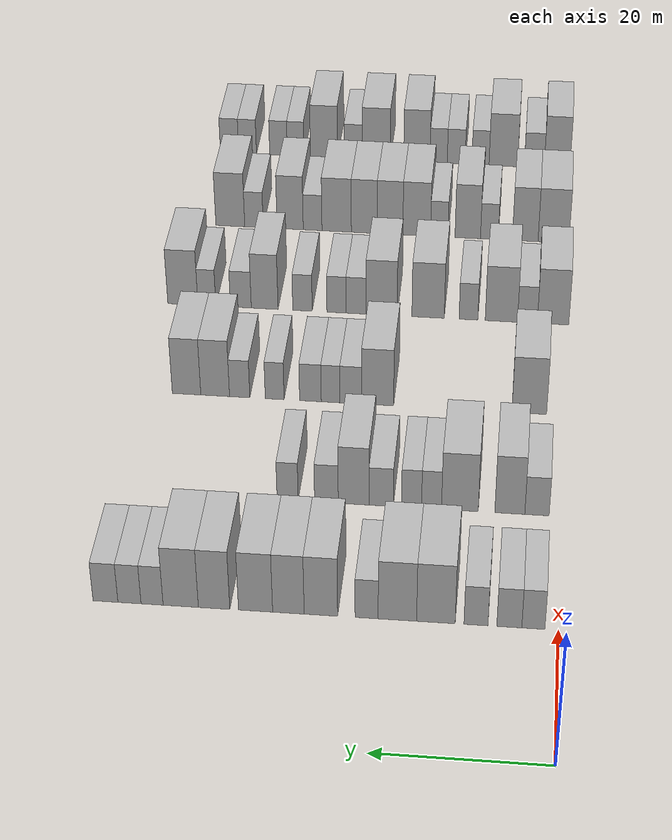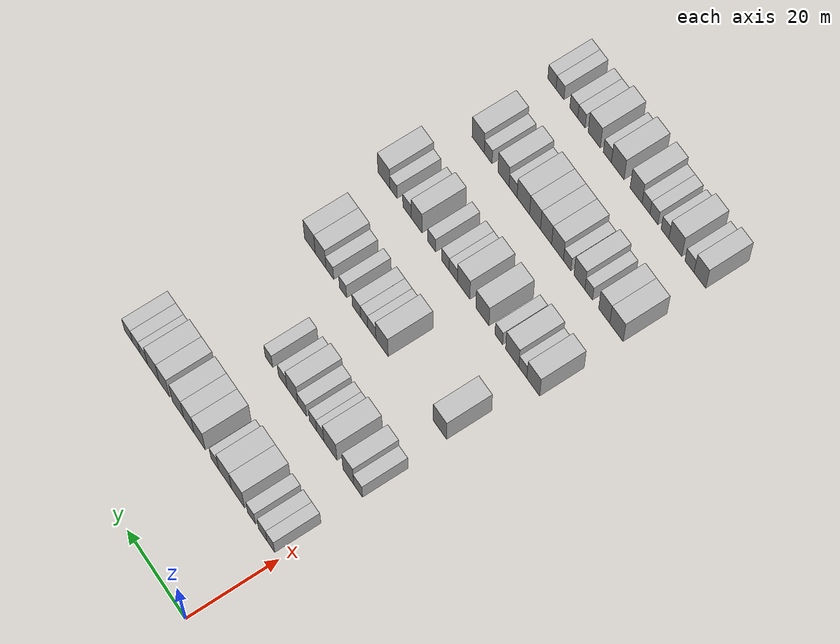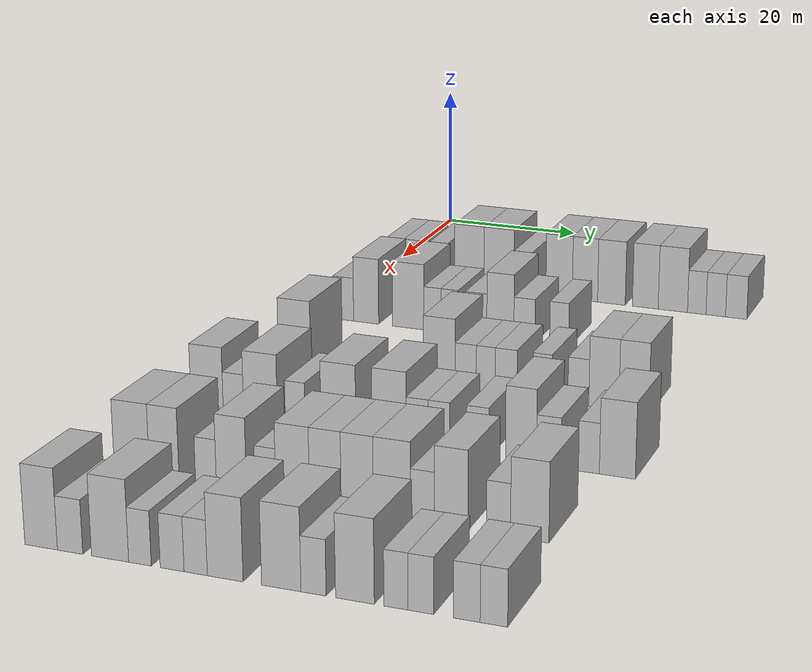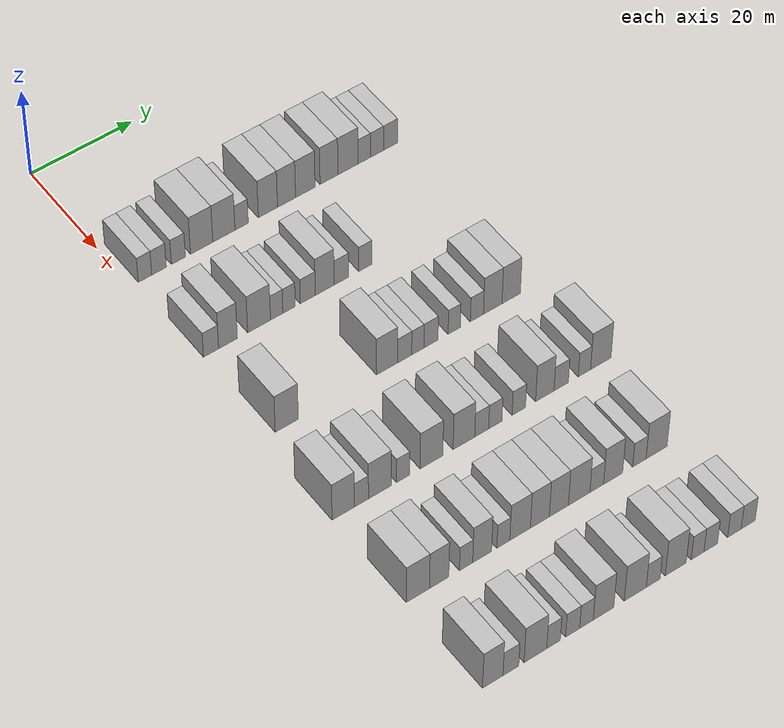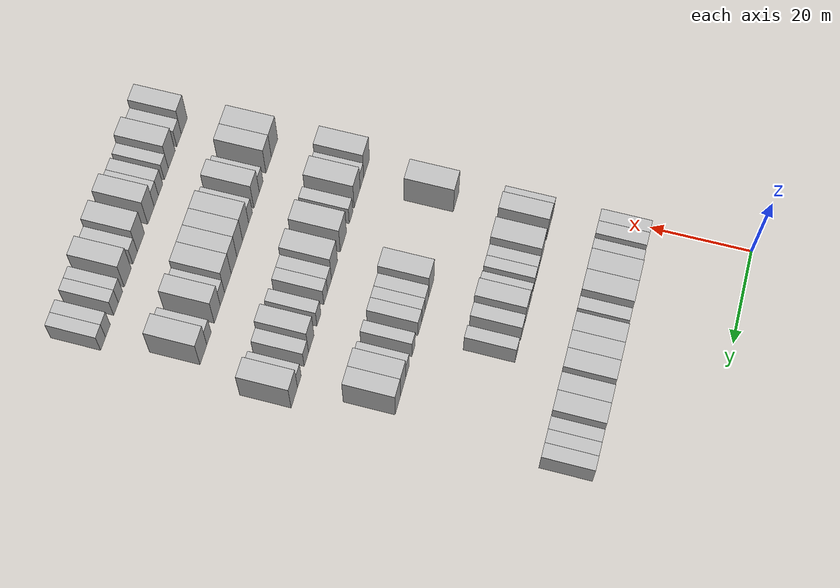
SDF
<sdf version="1.6">
 <world name="default">
  <model name="building_78">
   <static>1</static>
   <pose>25.0000 2.8547 0 0.000000 0.000000 0.000000</pose>
   <link name="link">
    <pose>0 0 3.00 0 0 0</pose>
    <collision name="collision"><geometry><box><size>10.0000 2.6202 6.0000</size></box></geometry></collision>
    <visual name="visual">
     <cast_shadows>0</cast_shadows>
     <geometry><box><size>10.0000 2.6202 6.0000</size></box></geometry>
     <material>
      <script>
       <uri>model://HANNAS_wall/materials/scripts</uri>
       <uri>model://HANNAS_wall/materials/textures</uri>
       <name>vrc/HANNAS_wall</name>
      </script>
     </material>
    </visual>
   </link>
  </model>
  <model name="building_79">
   <static>1</static>
   <pose>25.0000 5.5787 0 0.000000 0.000000 0.000000</pose>
   <link name="link">
    <pose>0 0 3.00 0 0 0</pose>
    <collision name="collision"><geometry><box><size>10.0000 2.8278 6.0000</size></box></geometry></collision>
    <visual name="visual">
     <cast_shadows>0</cast_shadows>
     <geometry><box><size>10.0000 2.8278 6.0000</size></box></geometry>
     <material>
      <script>
       <uri>model://HANNAS_wall/materials/scripts</uri>
       <uri>model://HANNAS_wall/materials/textures</uri>
       <name>vrc/HANNAS_wall</name>
      </script>
     </material>
    </visual>
   </link>
  </model>
  <model name="building_80">
   <static>1</static>
   <pose>25.0000 9.3568 0 0.000000 0.000000 0.000000</pose>
   <link name="link">
    <pose>0 0 3.00 0 0 0</pose>
    <collision name="collision"><geometry><box><size>10.0000 2.7286 6.0000</size></box></geometry></collision>
    <visual name="visual">
     <cast_shadows>0</cast_shadows>
     <geometry><box><size>10.0000 2.7286 6.0000</size></box></geometry>
     <material>
      <script>
       <uri>model://HANNAS_wall/materials/scripts</uri>
       <uri>model://HANNAS_wall/materials/textures</uri>
       <name>vrc/HANNAS_wall</name>
      </script>
     </material>
    </visual>
   </link>
  </model>
  <model name="building_81">
   <static>1</static>
   <pose>25.0000 13.9173 0 0.000000 0.000000 0.000000</pose>
   <link name="link">
    <pose>0 0 4.50 0 0 0</pose>
    <collision name="collision"><geometry><box><size>10.0000 4.3924 9.0000</size></box></geometry></collision>
    <visual name="visual">
     <cast_shadows>0</cast_shadows>
     <geometry><box><size>10.0000 4.3924 9.0000</size></box></geometry>
     <material>
      <script>
       <uri>model://HANNAS_wall/materials/scripts</uri>
       <uri>model://HANNAS_wall/materials/textures</uri>
       <name>vrc/HANNAS_wall</name>
      </script>
     </material>
    </visual>
   </link>
  </model>
  <model name="building_82">
   <static>1</static>
   <pose>25.0000 18.3083 0 0.000000 0.000000 0.000000</pose>
   <link name="link">
    <pose>0 0 4.50 0 0 0</pose>
    <collision name="collision"><geometry><box><size>10.0000 4.3897 9.0000</size></box></geometry></collision>
    <visual name="visual">
     <cast_shadows>0</cast_shadows>
     <geometry><box><size>10.0000 4.3897 9.0000</size></box></geometry>
     <material>
      <script>
       <uri>model://HANNAS_wall/materials/scripts</uri>
       <uri>model://HANNAS_wall/materials/textures</uri>
       <name>vrc/HANNAS_wall</name>
      </script>
     </material>
    </visual>
   </link>
  </model>
  <model name="building_83">
   <static>1</static>
   <pose>25.0000 21.8197 0 0.000000 0.000000 0.000000</pose>
   <link name="link">
    <pose>0 0 3.00 0 0 0</pose>
    <collision name="collision"><geometry><box><size>10.0000 2.6331 6.0000</size></box></geometry></collision>
    <visual name="visual">
     <cast_shadows>0</cast_shadows>
     <geometry><box><size>10.0000 2.6331 6.0000</size></box></geometry>
     <material>
      <script>
       <uri>model://HANNAS_wall/materials/scripts</uri>
       <uri>model://HANNAS_wall/materials/textures</uri>
       <name>vrc/HANNAS_wall</name>
      </script>
     </material>
    </visual>
   </link>
  </model>
  <model name="building_84">
   <static>1</static>
   <pose>25.0000 27.0525 0 0.000000 0.000000 0.000000</pose>
   <link name="link">
    <pose>0 0 4.50 0 0 0</pose>
    <collision name="collision"><geometry><box><size>10.0000 3.8324 9.0000</size></box></geometry></collision>
    <visual name="visual">
     <cast_shadows>0</cast_shadows>
     <geometry><box><size>10.0000 3.8324 9.0000</size></box></geometry>
     <material>
      <script>
       <uri>model://HANNAS_wall/materials/scripts</uri>
       <uri>model://HANNAS_wall/materials/textures</uri>
       <name>vrc/HANNAS_wall</name>
      </script>
     </material>
    </visual>
   </link>
  </model>
  <model name="building_85">
   <static>1</static>
   <pose>25.0000 30.7832 0 0.000000 0.000000 0.000000</pose>
   <link name="link">
    <pose>0 0 4.50 0 0 0</pose>
    <collision name="collision"><geometry><box><size>10.0000 3.6289 9.0000</size></box></geometry></collision>
    <visual name="visual">
     <cast_shadows>0</cast_shadows>
     <geometry><box><size>10.0000 3.6289 9.0000</size></box></geometry>
     <material>
      <script>
       <uri>model://HANNAS_wall/materials/scripts</uri>
       <uri>model://HANNAS_wall/materials/textures</uri>
       <name>vrc/HANNAS_wall</name>
      </script>
     </material>
    </visual>
   </link>
  </model>
  <model name="building_86">
   <static>1</static>
   <pose>25.0000 34.5635 0 0.000000 0.000000 0.000000</pose>
   <link name="link">
    <pose>0 0 4.50 0 0 0</pose>
    <collision name="collision"><geometry><box><size>10.0000 3.9317 9.0000</size></box></geometry></collision>
    <visual name="visual">
     <cast_shadows>0</cast_shadows>
     <geometry><box><size>10.0000 3.9317 9.0000</size></box></geometry>
     <material>
      <script>
       <uri>model://HANNAS_wall/materials/scripts</uri>
       <uri>model://HANNAS_wall/materials/textures</uri>
       <name>vrc/HANNAS_wall</name>
      </script>
     </material>
    </visual>
   </link>
  </model>
  <model name="building_87">
   <static>1</static>
   <pose>25.0000 39.3460 0 0.000000 0.000000 0.000000</pose>
   <link name="link">
    <pose>0 0 4.50 0 0 0</pose>
    <collision name="collision"><geometry><box><size>10.0000 3.6334 9.0000</size></box></geometry></collision>
    <visual name="visual">
     <cast_shadows>0</cast_shadows>
     <geometry><box><size>10.0000 3.6334 9.0000</size></box></geometry>
     <material>
      <script>
       <uri>model://HANNAS_wall/materials/scripts</uri>
       <uri>model://HANNAS_wall/materials/textures</uri>
       <name>vrc/HANNAS_wall</name>
      </script>
     </material>
    </visual>
   </link>
  </model>
  <model name="building_88">
   <static>1</static>
   <pose>25.0000 43.2037 0 0.000000 0.000000 0.000000</pose>
   <link name="link">
    <pose>0 0 4.50 0 0 0</pose>
    <collision name="collision"><geometry><box><size>10.0000 4.0820 9.0000</size></box></geometry></collision>
    <visual name="visual">
     <cast_shadows>0</cast_shadows>
     <geometry><box><size>10.0000 4.0820 9.0000</size></box></geometry>
     <material>
      <script>
       <uri>model://HANNAS_wall/materials/scripts</uri>
       <uri>model://HANNAS_wall/materials/textures</uri>
       <name>vrc/HANNAS_wall</name>
      </script>
     </material>
    </visual>
   </link>
  </model>
  <model name="building_89">
   <static>1</static>
   <pose>25.0000 46.5238 0 0.000000 0.000000 0.000000</pose>
   <link name="link">
    <pose>0 0 3.00 0 0 0</pose>
    <collision name="collision"><geometry><box><size>10.0000 2.5582 6.0000</size></box></geometry></collision>
    <visual name="visual">
     <cast_shadows>0</cast_shadows>
     <geometry><box><size>10.0000 2.5582 6.0000</size></box></geometry>
     <material>
      <script>
       <uri>model://HANNAS_wall/materials/scripts</uri>
       <uri>model://HANNAS_wall/materials/textures</uri>
       <name>vrc/HANNAS_wall</name>
      </script>
     </material>
    </visual>
   </link>
  </model>
  <model name="building_90">
   <static>1</static>
   <pose>25.0000 49.1461 0 0.000000 0.000000 0.000000</pose>
   <link name="link">
    <pose>0 0 3.00 0 0 0</pose>
    <collision name="collision"><geometry><box><size>10.0000 2.6864 6.0000</size></box></geometry></collision>
    <visual name="visual">
     <cast_shadows>0</cast_shadows>
     <geometry><box><size>10.0000 2.6864 6.0000</size></box></geometry>
     <material>
      <script>
       <uri>model://HANNAS_wall/materials/scripts</uri>
       <uri>model://HANNAS_wall/materials/textures</uri>
       <name>vrc/HANNAS_wall</name>
      </script>
     </material>
    </visual>
   </link>
  </model>
  <model name="building_91">
   <static>1</static>
   <pose>25.0000 51.9358 0 0.000000 0.000000 0.000000</pose>
   <link name="link">
    <pose>0 0 3.00 0 0 0</pose>
    <collision name="collision"><geometry><box><size>10.0000 2.8929 6.0000</size></box></geometry></collision>
    <visual name="visual">
     <cast_shadows>0</cast_shadows>
     <geometry><box><size>10.0000 2.8929 6.0000</size></box></geometry>
     <material>
      <script>
       <uri>model://HANNAS_wall/materials/scripts</uri>
       <uri>model://HANNAS_wall/materials/textures</uri>
       <name>vrc/HANNAS_wall</name>
      </script>
     </material>
    </visual>
   </link>
  </model>
  <model name="building_260">
   <static>1</static>
   <pose>44.0000 2.9138 0 0.000000 0.000000 0.000000</pose>
   <link name="link">
    <pose>0 0 3.00 0 0 0</pose>
    <collision name="collision"><geometry><box><size>10.0000 2.9205 6.0000</size></box></geometry></collision>
    <visual name="visual">
     <cast_shadows>0</cast_shadows>
     <geometry><box><size>10.0000 2.9205 6.0000</size></box></geometry>
     <material>
      <script>
       <uri>model://HANNAS_wall/materials/scripts</uri>
       <uri>model://HANNAS_wall/materials/textures</uri>
       <name>vrc/HANNAS_wall</name>
      </script>
     </material>
    </visual>
   </link>
  </model>
  <model name="building_261">
   <static>1</static>
   <pose>44.0000 6.1777 0 0.000000 0.000000 0.000000</pose>
   <link name="link">
    <pose>0 0 4.50 0 0 0</pose>
    <collision name="collision"><geometry><box><size>10.0000 3.6073 9.0000</size></box></geometry></collision>
    <visual name="visual">
     <cast_shadows>0</cast_shadows>
     <geometry><box><size>10.0000 3.6073 9.0000</size></box></geometry>
     <material>
      <script>
       <uri>model://HANNAS_wall/materials/scripts</uri>
       <uri>model://HANNAS_wall/materials/textures</uri>
       <name>vrc/HANNAS_wall</name>
      </script>
     </material>
    </visual>
   </link>
  </model>
  <model name="building_262">
   <static>1</static>
   <pose>44.0000 12.1971 0 0.000000 0.000000 0.000000</pose>
   <link name="link">
    <pose>0 0 4.50 0 0 0</pose>
    <collision name="collision"><geometry><box><size>10.0000 4.4315 9.0000</size></box></geometry></collision>
    <visual name="visual">
     <cast_shadows>0</cast_shadows>
     <geometry><box><size>10.0000 4.4315 9.0000</size></box></geometry>
     <material>
      <script>
       <uri>model://HANNAS_wall/materials/scripts</uri>
       <uri>model://HANNAS_wall/materials/textures</uri>
       <name>vrc/HANNAS_wall</name>
      </script>
     </material>
    </visual>
   </link>
  </model>
  <model name="building_263">
   <static>1</static>
   <pose>44.0000 15.6196 0 0.000000 0.000000 0.000000</pose>
   <link name="link">
    <pose>0 0 3.00 0 0 0</pose>
    <collision name="collision"><geometry><box><size>10.0000 2.4136 6.0000</size></box></geometry></collision>
    <visual name="visual">
     <cast_shadows>0</cast_shadows>
     <geometry><box><size>10.0000 2.4136 6.0000</size></box></geometry>
     <material>
      <script>
       <uri>model://HANNAS_wall/materials/scripts</uri>
       <uri>model://HANNAS_wall/materials/textures</uri>
       <name>vrc/HANNAS_wall</name>
      </script>
     </material>
    </visual>
   </link>
  </model>
  <model name="building_264">
   <static>1</static>
   <pose>44.0000 18.0384 0 0.000000 0.000000 0.000000</pose>
   <link name="link">
    <pose>0 0 3.00 0 0 0</pose>
    <collision name="collision"><geometry><box><size>10.0000 2.4239 6.0000</size></box></geometry></collision>
    <visual name="visual">
     <cast_shadows>0</cast_shadows>
     <geometry><box><size>10.0000 2.4239 6.0000</size></box></geometry>
     <material>
      <script>
       <uri>model://HANNAS_wall/materials/scripts</uri>
       <uri>model://HANNAS_wall/materials/textures</uri>
       <name>vrc/HANNAS_wall</name>
      </script>
     </material>
    </visual>
   </link>
  </model>
  <model name="building_265">
   <static>1</static>
   <pose>44.0000 21.7308 0 0.000000 0.000000 0.000000</pose>
   <link name="link">
    <pose>0 0 3.00 0 0 0</pose>
    <collision name="collision"><geometry><box><size>10.0000 2.9609 6.0000</size></box></geometry></collision>
    <visual name="visual">
     <cast_shadows>0</cast_shadows>
     <geometry><box><size>10.0000 2.9609 6.0000</size></box></geometry>
     <material>
      <script>
       <uri>model://HANNAS_wall/materials/scripts</uri>
       <uri>model://HANNAS_wall/materials/textures</uri>
       <name>vrc/HANNAS_wall</name>
      </script>
     </material>
    </visual>
   </link>
  </model>
  <model name="building_266">
   <static>1</static>
   <pose>44.0000 25.0698 0 0.000000 0.000000 0.000000</pose>
   <link name="link">
    <pose>0 0 4.50 0 0 0</pose>
    <collision name="collision"><geometry><box><size>10.0000 3.7171 9.0000</size></box></geometry></collision>
    <visual name="visual">
     <cast_shadows>0</cast_shadows>
     <geometry><box><size>10.0000 3.7171 9.0000</size></box></geometry>
     <material>
      <script>
       <uri>model://HANNAS_wall/materials/scripts</uri>
       <uri>model://HANNAS_wall/materials/textures</uri>
       <name>vrc/HANNAS_wall</name>
      </script>
     </material>
    </visual>
   </link>
  </model>
  <model name="building_267">
   <static>1</static>
   <pose>44.0000 28.3707 0 0.000000 0.000000 0.000000</pose>
   <link name="link">
    <pose>0 0 3.00 0 0 0</pose>
    <collision name="collision"><geometry><box><size>10.0000 2.8848 6.0000</size></box></geometry></collision>
    <visual name="visual">
     <cast_shadows>0</cast_shadows>
     <geometry><box><size>10.0000 2.8848 6.0000</size></box></geometry>
     <material>
      <script>
       <uri>model://HANNAS_wall/materials/scripts</uri>
       <uri>model://HANNAS_wall/materials/textures</uri>
       <name>vrc/HANNAS_wall</name>
      </script>
     </material>
    </visual>
   </link>
  </model>
  <model name="building_268">
   <static>1</static>
   <pose>44.0000 33.0998 0 0.000000 0.000000 0.000000</pose>
   <link name="link">
    <pose>0 0 3.00 0 0 0</pose>
    <collision name="collision"><geometry><box><size>10.0000 2.5735 6.0000</size></box></geometry></collision>
    <visual name="visual">
     <cast_shadows>0</cast_shadows>
     <geometry><box><size>10.0000 2.5735 6.0000</size></box></geometry>
     <material>
      <script>
       <uri>model://HANNAS_wall/materials/scripts</uri>
       <uri>model://HANNAS_wall/materials/textures</uri>
       <name>vrc/HANNAS_wall</name>
      </script>
     </material>
    </visual>
   </link>
  </model>
  <model name="building_416">
   <static>1</static>
   <pose>63.0000 4.3640 0 0.000000 0.000000 0.000000</pose>
   <link name="link">
    <pose>0 0 4.50 0 0 0</pose>
    <collision name="collision"><geometry><box><size>10.0000 4.4091 9.0000</size></box></geometry></collision>
    <visual name="visual">
     <cast_shadows>0</cast_shadows>
     <geometry><box><size>10.0000 4.4091 9.0000</size></box></geometry>
     <material>
      <script>
       <uri>model://HANNAS_wall/materials/scripts</uri>
       <uri>model://HANNAS_wall/materials/textures</uri>
       <name>vrc/HANNAS_wall</name>
      </script>
     </material>
    </visual>
   </link>
  </model>
  <model name="building_417">
   <static>1</static>
   <pose>63.0000 23.7426 0 0.000000 0.000000 0.000000</pose>
   <link name="link">
    <pose>0 0 4.50 0 0 0</pose>
    <collision name="collision"><geometry><box><size>10.0000 4.1160 9.0000</size></box></geometry></collision>
    <visual name="visual">
     <cast_shadows>0</cast_shadows>
     <geometry><box><size>10.0000 4.1160 9.0000</size></box></geometry>
     <material>
      <script>
       <uri>model://HANNAS_wall/materials/scripts</uri>
       <uri>model://HANNAS_wall/materials/textures</uri>
       <name>vrc/HANNAS_wall</name>
      </script>
     </material>
    </visual>
   </link>
  </model>
  <model name="building_418">
   <static>1</static>
   <pose>63.0000 27.1865 0 0.000000 0.000000 0.000000</pose>
   <link name="link">
    <pose>0 0 3.00 0 0 0</pose>
    <collision name="collision"><geometry><box><size>10.0000 2.7718 6.0000</size></box></geometry></collision>
    <visual name="visual">
     <cast_shadows>0</cast_shadows>
     <geometry><box><size>10.0000 2.7718 6.0000</size></box></geometry>
     <material>
      <script>
       <uri>model://HANNAS_wall/materials/scripts</uri>
       <uri>model://HANNAS_wall/materials/textures</uri>
       <name>vrc/HANNAS_wall</name>
      </script>
     </material>
    </visual>
   </link>
  </model>
  <model name="building_419">
   <static>1</static>
   <pose>63.0000 29.7789 0 0.000000 0.000000 0.000000</pose>
   <link name="link">
    <pose>0 0 3.00 0 0 0</pose>
    <collision name="collision"><geometry><box><size>10.0000 2.4132 6.0000</size></box></geometry></collision>
    <visual name="visual">
     <cast_shadows>0</cast_shadows>
     <geometry><box><size>10.0000 2.4132 6.0000</size></box></geometry>
     <material>
      <script>
       <uri>model://HANNAS_wall/materials/scripts</uri>
       <uri>model://HANNAS_wall/materials/textures</uri>
       <name>vrc/HANNAS_wall</name>
      </script>
     </material>
    </visual>
   </link>
  </model>
  <model name="building_420">
   <static>1</static>
   <pose>63.0000 32.3839 0 0.000000 0.000000 0.000000</pose>
   <link name="link">
    <pose>0 0 3.00 0 0 0</pose>
    <collision name="collision"><geometry><box><size>10.0000 2.7966 6.0000</size></box></geometry></collision>
    <visual name="visual">
     <cast_shadows>0</cast_shadows>
     <geometry><box><size>10.0000 2.7966 6.0000</size></box></geometry>
     <material>
      <script>
       <uri>model://HANNAS_wall/materials/scripts</uri>
       <uri>model://HANNAS_wall/materials/textures</uri>
       <name>vrc/HANNAS_wall</name>
      </script>
     </material>
    </visual>
   </link>
  </model>
  <model name="building_421">
   <static>1</static>
   <pose>63.0000 36.9987 0 0.000000 0.000000 0.000000</pose>
   <link name="link">
    <pose>0 0 3.00 0 0 0</pose>
    <collision name="collision"><geometry><box><size>10.0000 2.4331 6.0000</size></box></geometry></collision>
    <visual name="visual">
     <cast_shadows>0</cast_shadows>
     <geometry><box><size>10.0000 2.4331 6.0000</size></box></geometry>
     <material>
      <script>
       <uri>model://HANNAS_wall/materials/scripts</uri>
       <uri>model://HANNAS_wall/materials/textures</uri>
       <name>vrc/HANNAS_wall</name>
      </script>
     </material>
    </visual>
   </link>
  </model>
  <model name="building_422">
   <static>1</static>
   <pose>63.0000 41.5310 0 0.000000 0.000000 0.000000</pose>
   <link name="link">
    <pose>0 0 3.00 0 0 0</pose>
    <collision name="collision"><geometry><box><size>10.0000 2.6315 6.0000</size></box></geometry></collision>
    <visual name="visual">
     <cast_shadows>0</cast_shadows>
     <geometry><box><size>10.0000 2.6315 6.0000</size></box></geometry>
     <material>
      <script>
       <uri>model://HANNAS_wall/materials/scripts</uri>
       <uri>model://HANNAS_wall/materials/textures</uri>
       <name>vrc/HANNAS_wall</name>
      </script>
     </material>
    </visual>
   </link>
  </model>
  <model name="building_423">
   <static>1</static>
   <pose>63.0000 44.7117 0 0.000000 0.000000 0.000000</pose>
   <link name="link">
    <pose>0 0 4.50 0 0 0</pose>
    <collision name="collision"><geometry><box><size>10.0000 3.7298 9.0000</size></box></geometry></collision>
    <visual name="visual">
     <cast_shadows>0</cast_shadows>
     <geometry><box><size>10.0000 3.7298 9.0000</size></box></geometry>
     <material>
      <script>
       <uri>model://HANNAS_wall/materials/scripts</uri>
       <uri>model://HANNAS_wall/materials/textures</uri>
       <name>vrc/HANNAS_wall</name>
      </script>
     </material>
    </visual>
   </link>
  </model>
  <model name="building_424">
   <static>1</static>
   <pose>63.0000 48.4250 0 0.000000 0.000000 0.000000</pose>
   <link name="link">
    <pose>0 0 4.50 0 0 0</pose>
    <collision name="collision"><geometry><box><size>10.0000 3.6968 9.0000</size></box></geometry></collision>
    <visual name="visual">
     <cast_shadows>0</cast_shadows>
     <geometry><box><size>10.0000 3.6968 9.0000</size></box></geometry>
     <material>
      <script>
       <uri>model://HANNAS_wall/materials/scripts</uri>
       <uri>model://HANNAS_wall/materials/textures</uri>
       <name>vrc/HANNAS_wall</name>
      </script>
     </material>
    </visual>
   </link>
  </model>
  <model name="building_586">
   <static>1</static>
   <pose>82.0000 1.6964 0 0.000000 0.000000 0.000000</pose>
   <link name="link">
    <pose>0 0 4.50 0 0 0</pose>
    <collision name="collision"><geometry><box><size>10.0000 4.2117 9.0000</size></box></geometry></collision>
    <visual name="visual">
     <cast_shadows>0</cast_shadows>
     <geometry><box><size>10.0000 4.2117 9.0000</size></box></geometry>
     <material>
      <script>
       <uri>model://HANNAS_wall/materials/scripts</uri>
       <uri>model://HANNAS_wall/materials/textures</uri>
       <name>vrc/HANNAS_wall</name>
      </script>
     </material>
    </visual>
   </link>
  </model>
  <model name="building_587">
   <static>1</static>
   <pose>82.0000 5.1270 0 0.000000 0.000000 0.000000</pose>
   <link name="link">
    <pose>0 0 3.00 0 0 0</pose>
    <collision name="collision"><geometry><box><size>10.0000 2.6495 6.0000</size></box></geometry></collision>
    <visual name="visual">
     <cast_shadows>0</cast_shadows>
     <geometry><box><size>10.0000 2.6495 6.0000</size></box></geometry>
     <material>
      <script>
       <uri>model://HANNAS_wall/materials/scripts</uri>
       <uri>model://HANNAS_wall/materials/textures</uri>
       <name>vrc/HANNAS_wall</name>
      </script>
     </material>
    </visual>
   </link>
  </model>
  <model name="building_588">
   <static>1</static>
   <pose>82.0000 8.6235 0 0.000000 0.000000 0.000000</pose>
   <link name="link">
    <pose>0 0 4.50 0 0 0</pose>
    <collision name="collision"><geometry><box><size>10.0000 4.3435 9.0000</size></box></geometry></collision>
    <visual name="visual">
     <cast_shadows>0</cast_shadows>
     <geometry><box><size>10.0000 4.3435 9.0000</size></box></geometry>
     <material>
      <script>
       <uri>model://HANNAS_wall/materials/scripts</uri>
       <uri>model://HANNAS_wall/materials/textures</uri>
       <name>vrc/HANNAS_wall</name>
      </script>
     </material>
    </visual>
   </link>
  </model>
  <model name="building_589">
   <static>1</static>
   <pose>82.0000 13.0573 0 0.000000 0.000000 0.000000</pose>
   <link name="link">
    <pose>0 0 3.00 0 0 0</pose>
    <collision name="collision"><geometry><box><size>10.0000 2.5241 6.0000</size></box></geometry></collision>
    <visual name="visual">
     <cast_shadows>0</cast_shadows>
     <geometry><box><size>10.0000 2.5241 6.0000</size></box></geometry>
     <material>
      <script>
       <uri>model://HANNAS_wall/materials/scripts</uri>
       <uri>model://HANNAS_wall/materials/textures</uri>
       <name>vrc/HANNAS_wall</name>
      </script>
     </material>
    </visual>
   </link>
  </model>
  <model name="building_590">
   <static>1</static>
   <pose>82.0000 18.5035 0 0.000000 0.000000 0.000000</pose>
   <link name="link">
    <pose>0 0 4.50 0 0 0</pose>
    <collision name="collision"><geometry><box><size>10.0000 4.3685 9.0000</size></box></geometry></collision>
    <visual name="visual">
     <cast_shadows>0</cast_shadows>
     <geometry><box><size>10.0000 4.3685 9.0000</size></box></geometry>
     <material>
      <script>
       <uri>model://HANNAS_wall/materials/scripts</uri>
       <uri>model://HANNAS_wall/materials/textures</uri>
       <name>vrc/HANNAS_wall</name>
      </script>
     </material>
    </visual>
   </link>
  </model>
  <model name="building_591">
   <static>1</static>
   <pose>82.0000 24.7901 0 0.000000 0.000000 0.000000</pose>
   <link name="link">
    <pose>0 0 4.50 0 0 0</pose>
    <collision name="collision"><geometry><box><size>10.0000 4.2046 9.0000</size></box></geometry></collision>
    <visual name="visual">
     <cast_shadows>0</cast_shadows>
     <geometry><box><size>10.0000 4.2046 9.0000</size></box></geometry>
     <material>
      <script>
       <uri>model://HANNAS_wall/materials/scripts</uri>
       <uri>model://HANNAS_wall/materials/textures</uri>
       <name>vrc/HANNAS_wall</name>
      </script>
     </material>
    </visual>
   </link>
  </model>
  <model name="building_592">
   <static>1</static>
   <pose>82.0000 28.2503 0 0.000000 0.000000 0.000000</pose>
   <link name="link">
    <pose>0 0 3.00 0 0 0</pose>
    <collision name="collision"><geometry><box><size>10.0000 2.7158 6.0000</size></box></geometry></collision>
    <visual name="visual">
     <cast_shadows>0</cast_shadows>
     <geometry><box><size>10.0000 2.7158 6.0000</size></box></geometry>
     <material>
      <script>
       <uri>model://HANNAS_wall/materials/scripts</uri>
       <uri>model://HANNAS_wall/materials/textures</uri>
       <name>vrc/HANNAS_wall</name>
      </script>
     </material>
    </visual>
   </link>
  </model>
  <model name="building_593">
   <static>1</static>
   <pose>82.0000 30.9081 0 0.000000 0.000000 0.000000</pose>
   <link name="link">
    <pose>0 0 3.00 0 0 0</pose>
    <collision name="collision"><geometry><box><size>10.0000 2.5998 6.0000</size></box></geometry></collision>
    <visual name="visual">
     <cast_shadows>0</cast_shadows>
     <geometry><box><size>10.0000 2.5998 6.0000</size></box></geometry>
     <material>
      <script>
       <uri>model://HANNAS_wall/materials/scripts</uri>
       <uri>model://HANNAS_wall/materials/textures</uri>
       <name>vrc/HANNAS_wall</name>
      </script>
     </material>
    </visual>
   </link>
  </model>
  <model name="building_594">
   <static>1</static>
   <pose>82.0000 35.5308 0 0.000000 0.000000 0.000000</pose>
   <link name="link">
    <pose>0 0 3.00 0 0 0</pose>
    <collision name="collision"><geometry><box><size>10.0000 2.6457 6.0000</size></box></geometry></collision>
    <visual name="visual">
     <cast_shadows>0</cast_shadows>
     <geometry><box><size>10.0000 2.6457 6.0000</size></box></geometry>
     <material>
      <script>
       <uri>model://HANNAS_wall/materials/scripts</uri>
       <uri>model://HANNAS_wall/materials/textures</uri>
       <name>vrc/HANNAS_wall</name>
      </script>
     </material>
    </visual>
   </link>
  </model>
  <model name="building_595">
   <static>1</static>
   <pose>82.0000 40.6816 0 0.000000 0.000000 0.000000</pose>
   <link name="link">
    <pose>0 0 4.50 0 0 0</pose>
    <collision name="collision"><geometry><box><size>10.0000 3.6559 9.0000</size></box></geometry></collision>
    <visual name="visual">
     <cast_shadows>0</cast_shadows>
     <geometry><box><size>10.0000 3.6559 9.0000</size></box></geometry>
     <material>
      <script>
       <uri>model://HANNAS_wall/materials/scripts</uri>
       <uri>model://HANNAS_wall/materials/textures</uri>
       <name>vrc/HANNAS_wall</name>
      </script>
     </material>
    </visual>
   </link>
  </model>
  <model name="building_596">
   <static>1</static>
   <pose>82.0000 43.9380 0 0.000000 0.000000 0.000000</pose>
   <link name="link">
    <pose>0 0 3.00 0 0 0</pose>
    <collision name="collision"><geometry><box><size>10.0000 2.8568 6.0000</size></box></geometry></collision>
    <visual name="visual">
     <cast_shadows>0</cast_shadows>
     <geometry><box><size>10.0000 2.8568 6.0000</size></box></geometry>
     <material>
      <script>
       <uri>model://HANNAS_wall/materials/scripts</uri>
       <uri>model://HANNAS_wall/materials/textures</uri>
       <name>vrc/HANNAS_wall</name>
      </script>
     </material>
    </visual>
   </link>
  </model>
  <model name="building_597">
   <static>1</static>
   <pose>82.0000 48.5926 0 0.000000 0.000000 0.000000</pose>
   <link name="link">
    <pose>0 0 3.00 0 0 0</pose>
    <collision name="collision"><geometry><box><size>10.0000 2.4525 6.0000</size></box></geometry></collision>
    <visual name="visual">
     <cast_shadows>0</cast_shadows>
     <geometry><box><size>10.0000 2.4525 6.0000</size></box></geometry>
     <material>
      <script>
       <uri>model://HANNAS_wall/materials/scripts</uri>
       <uri>model://HANNAS_wall/materials/textures</uri>
       <name>vrc/HANNAS_wall</name>
      </script>
     </material>
    </visual>
   </link>
  </model>
  <model name="building_598">
   <static>1</static>
   <pose>82.0000 51.8816 0 0.000000 0.000000 0.000000</pose>
   <link name="link">
    <pose>0 0 4.50 0 0 0</pose>
    <collision name="collision"><geometry><box><size>10.0000 4.1255 9.0000</size></box></geometry></collision>
    <visual name="visual">
     <cast_shadows>0</cast_shadows>
     <geometry><box><size>10.0000 4.1255 9.0000</size></box></geometry>
     <material>
      <script>
       <uri>model://HANNAS_wall/materials/scripts</uri>
       <uri>model://HANNAS_wall/materials/textures</uri>
       <name>vrc/HANNAS_wall</name>
      </script>
     </material>
    </visual>
   </link>
  </model>
  <model name="building_759">
   <static>1</static>
   <pose>101.0000 1.9911 0 0.000000 0.000000 0.000000</pose>
   <link name="link">
    <pose>0 0 4.50 0 0 0</pose>
    <collision name="collision"><geometry><box><size>10.0000 4.3529 9.0000</size></box></geometry></collision>
    <visual name="visual">
     <cast_shadows>0</cast_shadows>
     <geometry><box><size>10.0000 4.3529 9.0000</size></box></geometry>
     <material>
      <script>
       <uri>model://HANNAS_wall/materials/scripts</uri>
       <uri>model://HANNAS_wall/materials/textures</uri>
       <name>vrc/HANNAS_wall</name>
      </script>
     </material>
    </visual>
   </link>
  </model>
  <model name="building_760">
   <static>1</static>
   <pose>101.0000 5.9792 0 0.000000 0.000000 0.000000</pose>
   <link name="link">
    <pose>0 0 4.50 0 0 0</pose>
    <collision name="collision"><geometry><box><size>10.0000 3.6235 9.0000</size></box></geometry></collision>
    <visual name="visual">
     <cast_shadows>0</cast_shadows>
     <geometry><box><size>10.0000 3.6235 9.0000</size></box></geometry>
     <material>
      <script>
       <uri>model://HANNAS_wall/materials/scripts</uri>
       <uri>model://HANNAS_wall/materials/textures</uri>
       <name>vrc/HANNAS_wall</name>
      </script>
     </material>
    </visual>
   </link>
  </model>
  <model name="building_761">
   <static>1</static>
   <pose>101.0000 11.0457 0 0.000000 0.000000 0.000000</pose>
   <link name="link">
    <pose>0 0 3.00 0 0 0</pose>
    <collision name="collision"><geometry><box><size>10.0000 2.5094 6.0000</size></box></geometry></collision>
    <visual name="visual">
     <cast_shadows>0</cast_shadows>
     <geometry><box><size>10.0000 2.5094 6.0000</size></box></geometry>
     <material>
      <script>
       <uri>model://HANNAS_wall/materials/scripts</uri>
       <uri>model://HANNAS_wall/materials/textures</uri>
       <name>vrc/HANNAS_wall</name>
      </script>
     </material>
    </visual>
   </link>
  </model>
  <model name="building_762">
   <static>1</static>
   <pose>101.0000 14.1047 0 0.000000 0.000000 0.000000</pose>
   <link name="link">
    <pose>0 0 4.50 0 0 0</pose>
    <collision name="collision"><geometry><box><size>10.0000 3.6086 9.0000</size></box></geometry></collision>
    <visual name="visual">
     <cast_shadows>0</cast_shadows>
     <geometry><box><size>10.0000 3.6086 9.0000</size></box></geometry>
     <material>
      <script>
       <uri>model://HANNAS_wall/materials/scripts</uri>
       <uri>model://HANNAS_wall/materials/textures</uri>
       <name>vrc/HANNAS_wall</name>
      </script>
     </material>
    </visual>
   </link>
  </model>
  <model name="building_763">
   <static>1</static>
   <pose>101.0000 18.1443 0 0.000000 0.000000 0.000000</pose>
   <link name="link">
    <pose>0 0 3.00 0 0 0</pose>
    <collision name="collision"><geometry><box><size>10.0000 2.4705 6.0000</size></box></geometry></collision>
    <visual name="visual">
     <cast_shadows>0</cast_shadows>
     <geometry><box><size>10.0000 2.4705 6.0000</size></box></geometry>
     <material>
      <script>
       <uri>model://HANNAS_wall/materials/scripts</uri>
       <uri>model://HANNAS_wall/materials/textures</uri>
       <name>vrc/HANNAS_wall</name>
      </script>
     </material>
    </visual>
   </link>
  </model>
  <model name="building_764">
   <static>1</static>
   <pose>101.0000 21.3492 0 0.000000 0.000000 0.000000</pose>
   <link name="link">
    <pose>0 0 4.50 0 0 0</pose>
    <collision name="collision"><geometry><box><size>10.0000 3.9394 9.0000</size></box></geometry></collision>
    <visual name="visual">
     <cast_shadows>0</cast_shadows>
     <geometry><box><size>10.0000 3.9394 9.0000</size></box></geometry>
     <material>
      <script>
       <uri>model://HANNAS_wall/materials/scripts</uri>
       <uri>model://HANNAS_wall/materials/textures</uri>
       <name>vrc/HANNAS_wall</name>
      </script>
     </material>
    </visual>
   </link>
  </model>
  <model name="building_765">
   <static>1</static>
   <pose>101.0000 25.1529 0 0.000000 0.000000 0.000000</pose>
   <link name="link">
    <pose>0 0 4.50 0 0 0</pose>
    <collision name="collision"><geometry><box><size>10.0000 3.6680 9.0000</size></box></geometry></collision>
    <visual name="visual">
     <cast_shadows>0</cast_shadows>
     <geometry><box><size>10.0000 3.6680 9.0000</size></box></geometry>
     <material>
      <script>
       <uri>model://HANNAS_wall/materials/scripts</uri>
       <uri>model://HANNAS_wall/materials/textures</uri>
       <name>vrc/HANNAS_wall</name>
      </script>
     </material>
    </visual>
   </link>
  </model>
  <model name="building_766">
   <static>1</static>
   <pose>101.0000 28.8258 0 0.000000 0.000000 0.000000</pose>
   <link name="link">
    <pose>0 0 4.50 0 0 0</pose>
    <collision name="collision"><geometry><box><size>10.0000 3.6778 9.0000</size></box></geometry></collision>
    <visual name="visual">
     <cast_shadows>0</cast_shadows>
     <geometry><box><size>10.0000 3.6778 9.0000</size></box></geometry>
     <material>
      <script>
       <uri>model://HANNAS_wall/materials/scripts</uri>
       <uri>model://HANNAS_wall/materials/textures</uri>
       <name>vrc/HANNAS_wall</name>
      </script>
     </material>
    </visual>
   </link>
  </model>
  <model name="building_767">
   <static>1</static>
   <pose>101.0000 32.7647 0 0.000000 0.000000 0.000000</pose>
   <link name="link">
    <pose>0 0 4.50 0 0 0</pose>
    <collision name="collision"><geometry><box><size>10.0000 4.1999 9.0000</size></box></geometry></collision>
    <visual name="visual">
     <cast_shadows>0</cast_shadows>
     <geometry><box><size>10.0000 4.1999 9.0000</size></box></geometry>
     <material>
      <script>
       <uri>model://HANNAS_wall/materials/scripts</uri>
       <uri>model://HANNAS_wall/materials/textures</uri>
       <name>vrc/HANNAS_wall</name>
      </script>
     </material>
    </visual>
   </link>
  </model>
  <model name="building_768">
   <static>1</static>
   <pose>101.0000 36.2039 0 0.000000 0.000000 0.000000</pose>
   <link name="link">
    <pose>0 0 3.00 0 0 0</pose>
    <collision name="collision"><geometry><box><size>10.0000 2.6786 6.0000</size></box></geometry></collision>
    <visual name="visual">
     <cast_shadows>0</cast_shadows>
     <geometry><box><size>10.0000 2.6786 6.0000</size></box></geometry>
     <material>
      <script>
       <uri>model://HANNAS_wall/materials/scripts</uri>
       <uri>model://HANNAS_wall/materials/textures</uri>
       <name>vrc/HANNAS_wall</name>
      </script>
     </material>
    </visual>
   </link>
  </model>
  <model name="building_769">
   <static>1</static>
   <pose>101.0000 39.4174 0 0.000000 0.000000 0.000000</pose>
   <link name="link">
    <pose>0 0 4.50 0 0 0</pose>
    <collision name="collision"><geometry><box><size>10.0000 3.7484 9.0000</size></box></geometry></collision>
    <visual name="visual">
     <cast_shadows>0</cast_shadows>
     <geometry><box><size>10.0000 3.7484 9.0000</size></box></geometry>
     <material>
      <script>
       <uri>model://HANNAS_wall/materials/scripts</uri>
       <uri>model://HANNAS_wall/materials/textures</uri>
       <name>vrc/HANNAS_wall</name>
      </script>
     </material>
    </visual>
   </link>
  </model>
  <model name="building_770">
   <static>1</static>
   <pose>101.0000 44.6150 0 0.000000 0.000000 0.000000</pose>
   <link name="link">
    <pose>0 0 3.00 0 0 0</pose>
    <collision name="collision"><geometry><box><size>10.0000 2.6469 6.0000</size></box></geometry></collision>
    <visual name="visual">
     <cast_shadows>0</cast_shadows>
     <geometry><box><size>10.0000 2.6469 6.0000</size></box></geometry>
     <material>
      <script>
       <uri>model://HANNAS_wall/materials/scripts</uri>
       <uri>model://HANNAS_wall/materials/textures</uri>
       <name>vrc/HANNAS_wall</name>
      </script>
     </material>
    </visual>
   </link>
  </model>
  <model name="building_771">
   <static>1</static>
   <pose>101.0000 48.0168 0 0.000000 0.000000 0.000000</pose>
   <link name="link">
    <pose>0 0 4.50 0 0 0</pose>
    <collision name="collision"><geometry><box><size>10.0000 4.1565 9.0000</size></box></geometry></collision>
    <visual name="visual">
     <cast_shadows>0</cast_shadows>
     <geometry><box><size>10.0000 4.1565 9.0000</size></box></geometry>
     <material>
      <script>
       <uri>model://HANNAS_wall/materials/scripts</uri>
       <uri>model://HANNAS_wall/materials/textures</uri>
       <name>vrc/HANNAS_wall</name>
      </script>
     </material>
    </visual>
   </link>
  </model>
  <model name="building_921">
   <static>1</static>
   <pose>120.0000 1.8238 0 0.000000 0.000000 0.000000</pose>
   <link name="link">
    <pose>0 0 4.50 0 0 0</pose>
    <collision name="collision"><geometry><box><size>10.0000 3.7914 9.0000</size></box></geometry></collision>
    <visual name="visual">
     <cast_shadows>0</cast_shadows>
     <geometry><box><size>10.0000 3.7914 9.0000</size></box></geometry>
     <material>
      <script>
       <uri>model://HANNAS_wall/materials/scripts</uri>
       <uri>model://HANNAS_wall/materials/textures</uri>
       <name>vrc/HANNAS_wall</name>
      </script>
     </material>
    </visual>
   </link>
  </model>
  <model name="building_922">
   <static>1</static>
   <pose>120.0000 5.1878 0 0.000000 0.000000 0.000000</pose>
   <link name="link">
    <pose>0 0 3.00 0 0 0</pose>
    <collision name="collision"><geometry><box><size>10.0000 2.9365 6.0000</size></box></geometry></collision>
    <visual name="visual">
     <cast_shadows>0</cast_shadows>
     <geometry><box><size>10.0000 2.9365 6.0000</size></box></geometry>
     <material>
      <script>
       <uri>model://HANNAS_wall/materials/scripts</uri>
       <uri>model://HANNAS_wall/materials/textures</uri>
       <name>vrc/HANNAS_wall</name>
      </script>
     </material>
    </visual>
   </link>
  </model>
  <model name="building_923">
   <static>1</static>
   <pose>120.0000 9.7748 0 0.000000 0.000000 0.000000</pose>
   <link name="link">
    <pose>0 0 4.50 0 0 0</pose>
    <collision name="collision"><geometry><box><size>10.0000 4.2376 9.0000</size></box></geometry></collision>
    <visual name="visual">
     <cast_shadows>0</cast_shadows>
     <geometry><box><size>10.0000 4.2376 9.0000</size></box></geometry>
     <material>
      <script>
       <uri>model://HANNAS_wall/materials/scripts</uri>
       <uri>model://HANNAS_wall/materials/textures</uri>
       <name>vrc/HANNAS_wall</name>
      </script>
     </material>
    </visual>
   </link>
  </model>
  <model name="building_924">
   <static>1</static>
   <pose>120.0000 13.1698 0 0.000000 0.000000 0.000000</pose>
   <link name="link">
    <pose>0 0 3.00 0 0 0</pose>
    <collision name="collision"><geometry><box><size>10.0000 2.5524 6.0000</size></box></geometry></collision>
    <visual name="visual">
     <cast_shadows>0</cast_shadows>
     <geometry><box><size>10.0000 2.5524 6.0000</size></box></geometry>
     <material>
      <script>
       <uri>model://HANNAS_wall/materials/scripts</uri>
       <uri>model://HANNAS_wall/materials/textures</uri>
       <name>vrc/HANNAS_wall</name>
      </script>
     </material>
    </visual>
   </link>
  </model>
  <model name="building_925">
   <static>1</static>
   <pose>120.0000 16.7778 0 0.000000 0.000000 0.000000</pose>
   <link name="link">
    <pose>0 0 3.00 0 0 0</pose>
    <collision name="collision"><geometry><box><size>10.0000 2.6636 6.0000</size></box></geometry></collision>
    <visual name="visual">
     <cast_shadows>0</cast_shadows>
     <geometry><box><size>10.0000 2.6636 6.0000</size></box></geometry>
     <material>
      <script>
       <uri>model://HANNAS_wall/materials/scripts</uri>
       <uri>model://HANNAS_wall/materials/textures</uri>
       <name>vrc/HANNAS_wall</name>
      </script>
     </material>
    </visual>
   </link>
  </model>
  <model name="building_926">
   <static>1</static>
   <pose>120.0000 19.3967 0 0.000000 0.000000 0.000000</pose>
   <link name="link">
    <pose>0 0 3.00 0 0 0</pose>
    <collision name="collision"><geometry><box><size>10.0000 2.5742 6.0000</size></box></geometry></collision>
    <visual name="visual">
     <cast_shadows>0</cast_shadows>
     <geometry><box><size>10.0000 2.5742 6.0000</size></box></geometry>
     <material>
      <script>
       <uri>model://HANNAS_wall/materials/scripts</uri>
       <uri>model://HANNAS_wall/materials/textures</uri>
       <name>vrc/HANNAS_wall</name>
      </script>
     </material>
    </visual>
   </link>
  </model>
  <model name="building_927">
   <static>1</static>
   <pose>120.0000 22.6459 0 0.000000 0.000000 0.000000</pose>
   <link name="link">
    <pose>0 0 4.50 0 0 0</pose>
    <collision name="collision"><geometry><box><size>10.0000 3.9241 9.0000</size></box></geometry></collision>
    <visual name="visual">
     <cast_shadows>0</cast_shadows>
     <geometry><box><size>10.0000 3.9241 9.0000</size></box></geometry>
     <material>
      <script>
       <uri>model://HANNAS_wall/materials/scripts</uri>
       <uri>model://HANNAS_wall/materials/textures</uri>
       <name>vrc/HANNAS_wall</name>
      </script>
     </material>
    </visual>
   </link>
  </model>
  <model name="building_928">
   <static>1</static>
   <pose>120.0000 28.7232 0 0.000000 0.000000 0.000000</pose>
   <link name="link">
    <pose>0 0 4.50 0 0 0</pose>
    <collision name="collision"><geometry><box><size>10.0000 4.2305 9.0000</size></box></geometry></collision>
    <visual name="visual">
     <cast_shadows>0</cast_shadows>
     <geometry><box><size>10.0000 4.2305 9.0000</size></box></geometry>
     <material>
      <script>
       <uri>model://HANNAS_wall/materials/scripts</uri>
       <uri>model://HANNAS_wall/materials/textures</uri>
       <name>vrc/HANNAS_wall</name>
      </script>
     </material>
    </visual>
   </link>
  </model>
  <model name="building_929">
   <static>1</static>
   <pose>120.0000 32.1762 0 0.000000 0.000000 0.000000</pose>
   <link name="link">
    <pose>0 0 3.00 0 0 0</pose>
    <collision name="collision"><geometry><box><size>10.0000 2.6754 6.0000</size></box></geometry></collision>
    <visual name="visual">
     <cast_shadows>0</cast_shadows>
     <geometry><box><size>10.0000 2.6754 6.0000</size></box></geometry>
     <material>
      <script>
       <uri>model://HANNAS_wall/materials/scripts</uri>
       <uri>model://HANNAS_wall/materials/textures</uri>
       <name>vrc/HANNAS_wall</name>
      </script>
     </material>
    </visual>
   </link>
  </model>
  <model name="building_930">
   <static>1</static>
   <pose>120.0000 36.5426 0 0.000000 0.000000 0.000000</pose>
   <link name="link">
    <pose>0 0 4.50 0 0 0</pose>
    <collision name="collision"><geometry><box><size>10.0000 4.0575 9.0000</size></box></geometry></collision>
    <visual name="visual">
     <cast_shadows>0</cast_shadows>
     <geometry><box><size>10.0000 4.0575 9.0000</size></box></geometry>
     <material>
      <script>
       <uri>model://HANNAS_wall/materials/scripts</uri>
       <uri>model://HANNAS_wall/materials/textures</uri>
       <name>vrc/HANNAS_wall</name>
      </script>
     </material>
    </visual>
   </link>
  </model>
  <model name="building_931">
   <static>1</static>
   <pose>120.0000 40.8149 0 0.000000 0.000000 0.000000</pose>
   <link name="link">
    <pose>0 0 3.00 0 0 0</pose>
    <collision name="collision"><geometry><box><size>10.0000 2.4872 6.0000</size></box></geometry></collision>
    <visual name="visual">
     <cast_shadows>0</cast_shadows>
     <geometry><box><size>10.0000 2.4872 6.0000</size></box></geometry>
     <material>
      <script>
       <uri>model://HANNAS_wall/materials/scripts</uri>
       <uri>model://HANNAS_wall/materials/textures</uri>
       <name>vrc/HANNAS_wall</name>
      </script>
     </material>
    </visual>
   </link>
  </model>
  <model name="building_932">
   <static>1</static>
   <pose>120.0000 43.3834 0 0.000000 0.000000 0.000000</pose>
   <link name="link">
    <pose>0 0 3.00 0 0 0</pose>
    <collision name="collision"><geometry><box><size>10.0000 2.6498 6.0000</size></box></geometry></collision>
    <visual name="visual">
     <cast_shadows>0</cast_shadows>
     <geometry><box><size>10.0000 2.6498 6.0000</size></box></geometry>
     <material>
      <script>
       <uri>model://HANNAS_wall/materials/scripts</uri>
       <uri>model://HANNAS_wall/materials/textures</uri>
       <name>vrc/HANNAS_wall</name>
      </script>
     </material>
    </visual>
   </link>
  </model>
  <model name="building_933">
   <static>1</static>
   <pose>120.0000 48.0505 0 0.000000 0.000000 0.000000</pose>
   <link name="link">
    <pose>0 0 3.00 0 0 0</pose>
    <collision name="collision"><geometry><box><size>10.0000 2.6842 6.0000</size></box></geometry></collision>
    <visual name="visual">
     <cast_shadows>0</cast_shadows>
     <geometry><box><size>10.0000 2.6842 6.0000</size></box></geometry>
     <material>
      <script>
       <uri>model://HANNAS_wall/materials/scripts</uri>
       <uri>model://HANNAS_wall/materials/textures</uri>
       <name>vrc/HANNAS_wall</name>
      </script>
     </material>
    </visual>
   </link>
  </model>
  <model name="building_934">
   <static>1</static>
   <pose>120.0000 50.7721 0 0.000000 0.000000 0.000000</pose>
   <link name="link">
    <pose>0 0 3.00 0 0 0</pose>
    <collision name="collision"><geometry><box><size>10.0000 2.7590 6.0000</size></box></geometry></collision>
    <visual name="visual">
     <cast_shadows>0</cast_shadows>
     <geometry><box><size>10.0000 2.7590 6.0000</size></box></geometry>
     <material>
      <script>
       <uri>model://HANNAS_wall/materials/scripts</uri>
       <uri>model://HANNAS_wall/materials/textures</uri>
       <name>vrc/HANNAS_wall</name>
      </script>
     </material>
    </visual>
   </link>
  </model>
 </world>
</sdf>
